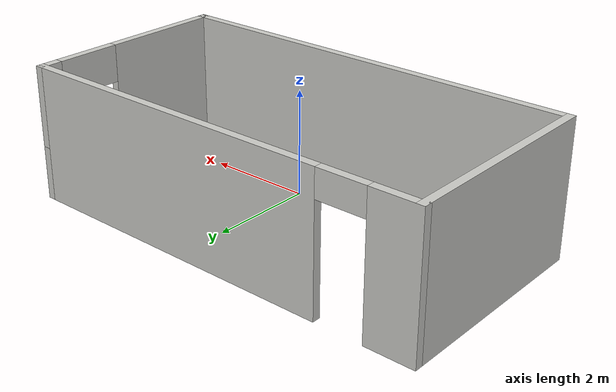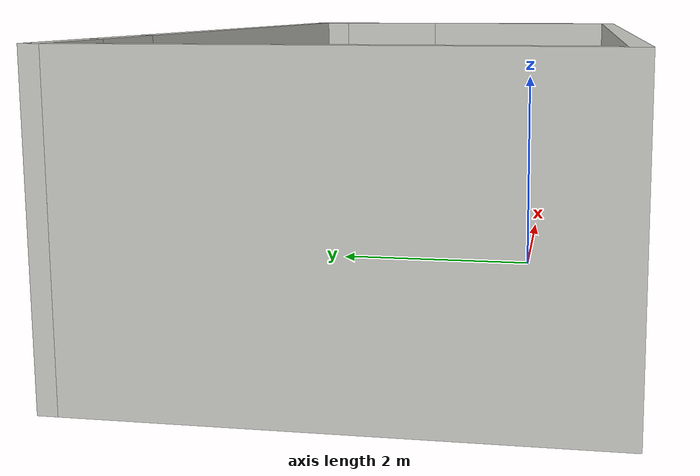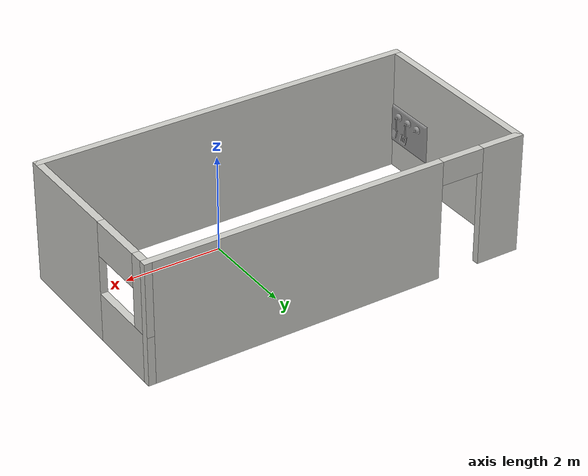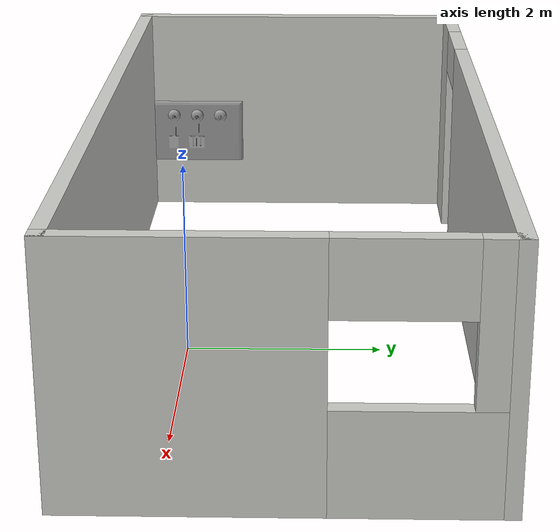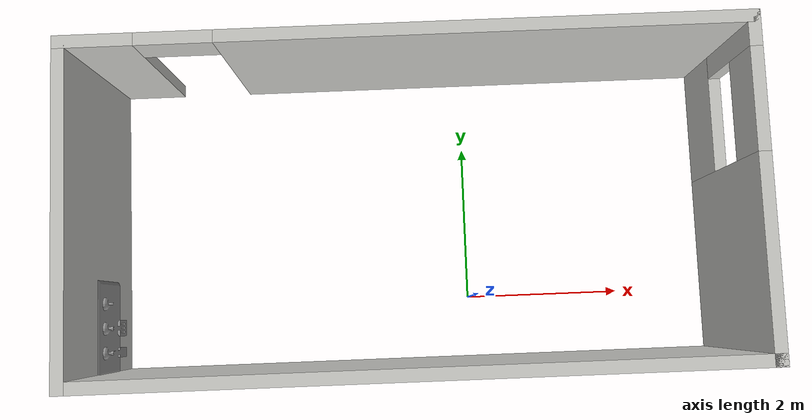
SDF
<?xml version='1.0'?>
<sdf version='1.6'>
  <model name='ur5_kitchentest2'>
    <pose frame=''>-0.705 1.065 0 0 -0 0</pose>
    <link name='Wall_21'>
      <visual name='Wall_21_Visual'>
        <pose frame=''>0 0 1.25 0 -0 0</pose>
        <geometry>
          <box>
            <size>0.15 0.15 2.5</size>
          </box>
        </geometry>
        <material>
          <script>
            <uri>file://media/materials/scripts/gazebo.material</uri>
            <name>Gazebo/Grey</name>
          </script>
          <ambient>1 1 1 1</ambient>
        </material>
        <meta>
          <layer>0</layer>
        </meta>
      </visual>
      <pose frame=''>3.925 -1.925 0 0 -0 0</pose>
    </link>
    <link name='Wall_22'>
      <pose frame=''>3.925 0 0 0 -0 1.5708</pose>
      <visual name='Wall_22_Visual_0'>
        <pose frame=''>-0.8125 0 1.25 0 -0 0</pose>
        <geometry>
          <box>
            <size>2.375 0.15 2.5</size>
          </box>
        </geometry>
        <material>
          <script>
            <uri>file://media/materials/scripts/gazebo.material</uri>
            <name>Gazebo/CeilingTiled</name>
          </script>
          <ambient>1 1 1 1</ambient>
        </material>
        <meta>
          <layer>0</layer>
        </meta>
      </visual>

      <visual name='Wall_22_Visual_1'>
        <pose frame=''>1.1875 0 0.5 0 -0 0</pose>
        <geometry>
          <box>
            <size>1.625 0.15 1</size>
          </box>
        </geometry>
        <material>
          <script>
            <uri>file://media/materials/scripts/gazebo.material</uri>
            <name>Gazebo/CeilingTiled</name>
          </script>
          <ambient>1 1 1 1</ambient>
        </material>
        <meta>
          <layer>0</layer>
        </meta>
      </visual>

      <visual name='Wall_22_Visual_2'>
        <pose frame=''>1.7875 0 1.75 0 -0 0</pose>
        <geometry>
          <box>
            <size>0.425 0.15 1.5</size>
          </box>
        </geometry>
        <material>
          <script>
            <uri>file://media/materials/scripts/gazebo.material</uri>
            <name>Gazebo/CeilingTiled</name>
          </script>
          <ambient>1 1 1 1</ambient>
        </material>
        <meta>
          <layer>0</layer>
        </meta>
      </visual>

      <visual name='Wall_22_Visual_3'>
        <pose frame=''>0.975 0 2.15 0 -0 0</pose>
        <geometry>
          <box>
            <size>1.2 0.15 0.7</size>
          </box>
        </geometry>
        <material>
          <script>
            <uri>file://media/materials/scripts/gazebo.material</uri>
            <name>Gazebo/CeilingTiled</name>
          </script>
          <ambient>1 1 1 1</ambient>
        </material>
        <meta>
          <layer>0</layer>
        </meta>
      </visual>

    </link>
    <link name='Wall_23'>
      <pose frame=''>0 1.925 0 0 -0 3.14159</pose>
      <visual name='Wall_23_Visual_0'>
        <pose frame=''>-0.9075 0 1.25 0 -0 0</pose>
        <geometry>
          <box>
            <size>6.185 0.15 2.5</size>
          </box>
        </geometry>
        <material>
          <script>
            <uri>file://media/materials/scripts/gazebo.material</uri>
            <name>Gazebo/CeilingTiled</name>
          </script>
          <ambient>1 1 1 1</ambient>
        </material>
        <meta>
          <layer>0</layer>
        </meta>
      </visual>

      <visual name='Wall_23_Visual_1'>
        <pose frame=''>3.5425 0 1.25 0 -0 0</pose>
        <geometry>
          <box>
            <size>0.915 0.15 2.5</size>
          </box>
        </geometry>
        <material>
          <script>
            <uri>file://media/materials/scripts/gazebo.material</uri>
            <name>Gazebo/CeilingTiled</name>
          </script>
          <ambient>1 1 1 1</ambient>
        </material>
        <meta>
          <layer>0</layer>
        </meta>
      </visual>

      <visual name='Wall_23_Visual_2'>
        <pose frame=''>2.635 0 2.25 0 -0 0</pose>
        <geometry>
          <box>
            <size>0.9 0.15 0.5</size>
          </box>
        </geometry>
        <material>
          <script>
            <uri>file://media/materials/scripts/gazebo.material</uri>
            <name>Gazebo/CeilingTiled</name>
          </script>
          <ambient>1 1 1 1</ambient>
        </material>
        <meta>
          <layer>0</layer>
        </meta>
      </visual>

    </link>
    <link name='Wall_24'>

      <visual name='Wall_24_Visual'>
        <pose frame=''>0 0 1.25 0 -0 0</pose>
        <geometry>
          <box>
            <size>4 0.15 2.5</size>
          </box>
        </geometry>
        <material>
          <script>
            <uri>file://media/materials/scripts/gazebo.material</uri>
            <name>Gazebo/CeilingTiled</name>
          </script>
          <ambient>1 1 1 1</ambient>
        </material>
        <meta>
          <layer>0</layer>
        </meta>
      </visual>
      <pose frame=''>-3.925 0 0 0 -0 -1.5708</pose>
    </link>
    <link name='Wall_27'>

      <visual name='Wall_27_Visual'>
        <pose frame=''>0 0 1.25 0 -0 0</pose>
        <geometry>
          <box>
            <size>8 0.15 2.5</size>
          </box>
        </geometry>
        <material>
          <script>
            <uri>file://media/materials/scripts/gazebo.material</uri>
            <name>Gazebo/CeilingTiled</name>
          </script>
          <ambient>1 1 1 1</ambient>
        </material>
        <meta>
          <layer>0</layer>
        </meta>
      </visual>
      <pose frame=''>0 -1.925 0 0 -0 0</pose>
    </link>
<link name='link_1'>
      <inertial>
        <mass>10</mass>
        <inertia>
          <ixx>0.166667</ixx>
          <ixy>0</ixy>
          <ixz>0</ixz>
          <iyy>0.166667</iyy>
          <iyz>0</iyz>
          <izz>0.166667</izz>
        </inertia>
      </inertial>
      <pose frame=''>5e-05 -2.8e-05 0 0 -0 0</pose>
      <visual name='visual'>
        <pose frame=''>-3.825 -1.3 1 0 -0 0</pose>
        <geometry>
          <mesh>
            <uri>model://guli/mesh/guli.stl</uri>
            <scale>0.01 0.01 0.01</scale>
          </mesh>
        </geometry>
        <material>
          <lighting>1</lighting>
          <script>
            <uri>file://media/materials/scripts/gazebo.material</uri>
            <name>Gazebo/Grey</name>
          </script>
          <shader type='pixel'/>
        </material>
        <transparency>0</transparency>
        <cast_shadows>1</cast_shadows>
      </visual>
      <collision name='collision'>
        <laser_retro>0</laser_retro>
        <max_contacts>10</max_contacts>
        <pose frame=''>-3.825 -1.3 1 0 -0 0</pose>
        <geometry>
          <mesh>
            <uri>model://guli/mesh/guli.stl</uri>
            <scale>0.01 0.01 0.01</scale>
          </mesh>
        </geometry>
        <surface>
          <friction>
            <ode>
              <mu>1</mu>
              <mu2>1</mu2>
              <fdir1>0 0 0</fdir1>
              <slip1>0</slip1>
              <slip2>0</slip2>
            </ode>
            <torsional>
              <coefficient>1</coefficient>
              <patch_radius>0</patch_radius>
              <surface_radius>0</surface_radius>
              <use_patch_radius>1</use_patch_radius>
              <ode>
                <slip>0</slip>
              </ode>
            </torsional>
          </friction>
          <bounce>
            <restitution_coefficient>0</restitution_coefficient>
            <threshold>1e+06</threshold>
          </bounce>
          <contact>
            <collide_without_contact>0</collide_without_contact>
            <collide_without_contact_bitmask>1</collide_without_contact_bitmask>
            <collide_bitmask>1</collide_bitmask>
            <ode>
              <soft_cfm>0</soft_cfm>
              <soft_erp>0.2</soft_erp>
              <kp>1e+13</kp>
              <kd>1</kd>
              <max_vel>0.01</max_vel>
              <min_depth>0</min_depth>
            </ode>
            <bullet>
              <split_impulse>1</split_impulse>
              <split_impulse_penetration_threshold>-0.01</split_impulse_penetration_threshold>
              <soft_cfm>0</soft_cfm>
              <soft_erp>0.2</soft_erp>
              <kp>1e+13</kp>
              <kd>1</kd>
            </bullet>
          </contact>
        </surface>
      </collision>
    </link>
    <static>1</static>
  </model>
</sdf>
